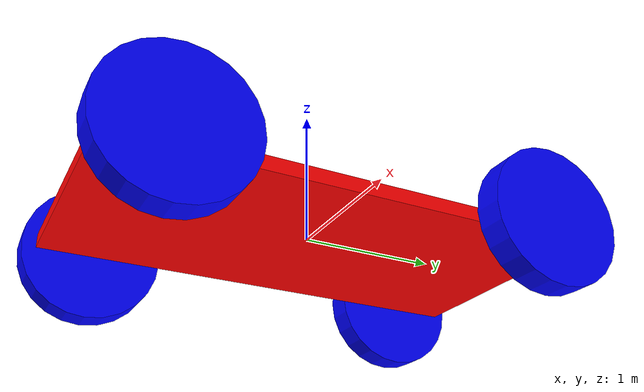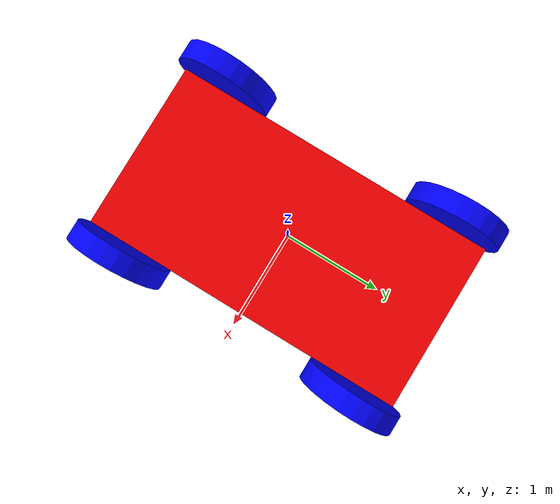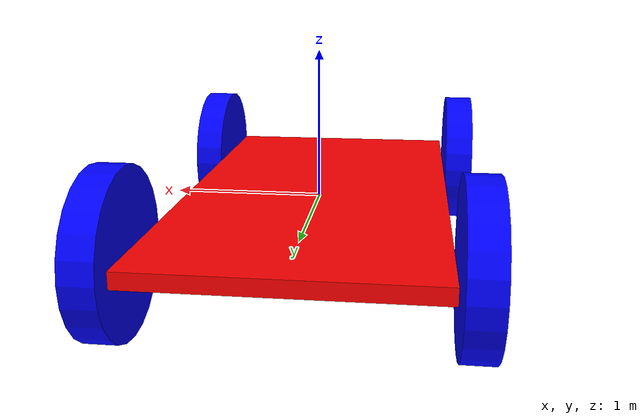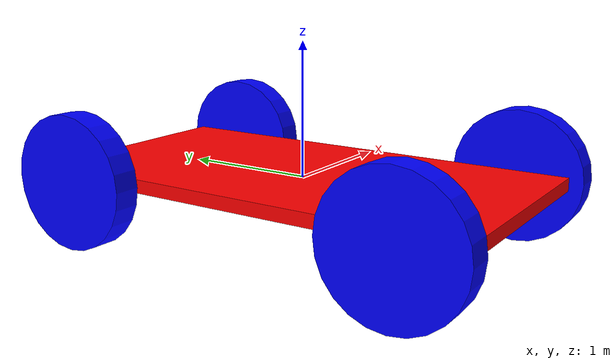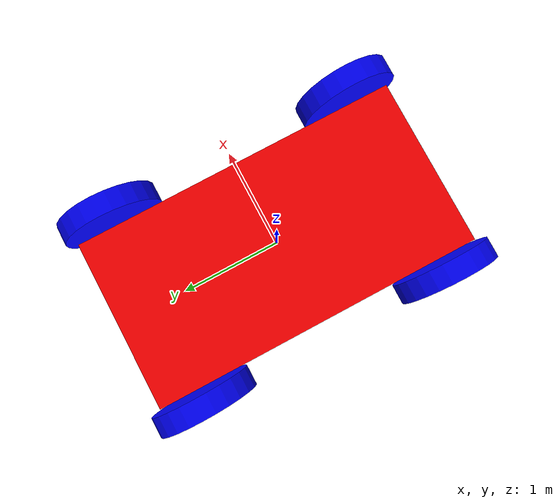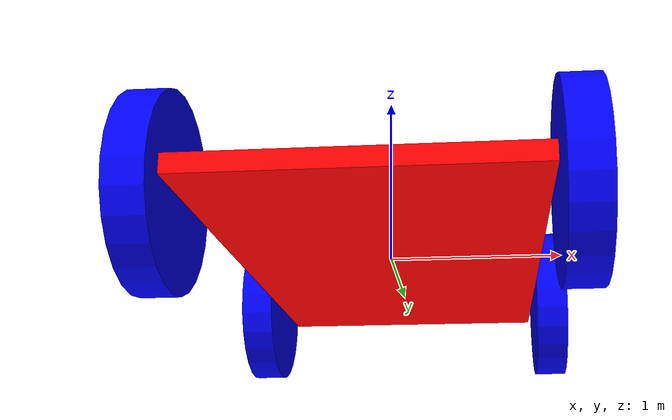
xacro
<?xml version="1.0"?>
<robot xmlns:xacro="http://www.ros.org/wiki/xacro" name="rover">

  <gazebo>
    <plugin name="gazebo_ros_control" filename="libgazebo_ros_control.so">
      <robotNamespace>/</robotNamespace>
    </plugin>
  </gazebo>

  <xacro:macro name="default_inertial" params="mass">
    <inertial>
      <mass value="${mass}" />
      <inertia ixx="1.0" ixy="0.0" ixz="0.0" iyy="1.0" iyz="0.0" izz="1.0" />
    </inertial>
  </xacro:macro>

<link name="base_link">
      <visual>
        <geometry>
            <box size="1.75 3.4 0.1"/>
        </geometry>
        <material name="red">
          <color rgba="1.0 0.0 0.0 1.0"/>
          <texture fillname=""/>
        </material>
      </visual>
      <collision>
        <geometry>
          <box size="1.75 3.4 0.1"/>
        </geometry>
      </collision>
  <xacro:default_inertial mass="10"/>
</link>

<xacro:macro name="wheel" params="name x y reflect">

  <link name="${name}_wheel">
    <origin xyz="0.0 0.0 0.0" rpy="0.0 0.0 0.0"/>
    <xacro:default_inertial mass="1"/>
    <visual name="">
      <origin xyz="0.0 0.0 0.0" rpy="0.0 0.0 0.0"/>
      <geometry>
        <cylinder radius="0.5" length="0.2"/>
      </geometry>
      <material name="blue">
        <color rgba="0.0 0.0 1.0 1.0"/>
      </material>
    </visual>
  <collision>
      <origin xyz="0.0 0.0 0.0" rpy="0.0 0.0 0.0"/>
      <geometry>
                <cylinder radius="0.5" length="0.1"/>
      </geometry>
  </collision>
  </link>

  <joint name="${name}_wheel_joint" type="continuous">
      <origin xyz="${reflect*x} ${y} 0.0" rpy=" 0.0 1.57 0.0"/>
      <parent link="base_link"/>
      <child link="${name}_wheel"/>
      <axis xyz="0.0 0.0 1.0" rpy="0 0 0"/>
  </joint>

    <gazebo reference="${name}_wheel">
        <mu1 value="200.0"/>
        <mu2 value="100.0"/>
        <kp value="10000000.0" />
        <kd value="1.0" />
        <material>Gazebo/Grey</material>
    </gazebo>

    <transmission name="${name}_wheel_trans">
      <type>transmission_interface/SimpleTransmission</type>
      <actuator name="${name}_wheel_motor">
        <mechanicalReduction>1</mechanicalReduction>
      </actuator>
      <joint name="${name}_wheel_joint">
        <hardwareInterface>hardware_interface/VelocityJointInterface</hardwareInterface>
      </joint>
    </transmission>

</xacro:macro>

<xacro:wheel name="front_right" x="1.0" y="1.3" reflect="1"/>
<xacro:wheel name="front_left" x="-1.0" y="1.3" reflect="1"/>
<xacro:wheel name="back_right" x="-1.0" y="-1.3" reflect="-1"/>
<xacro:wheel name="back_left" x="1.0" y="-1.3" reflect="-1"/>

</robot>
